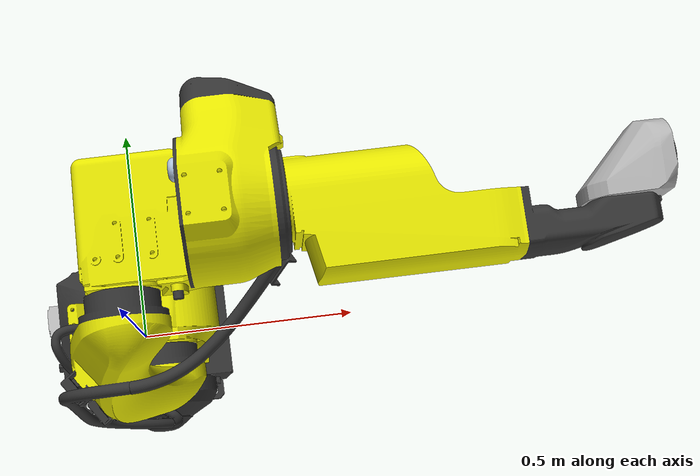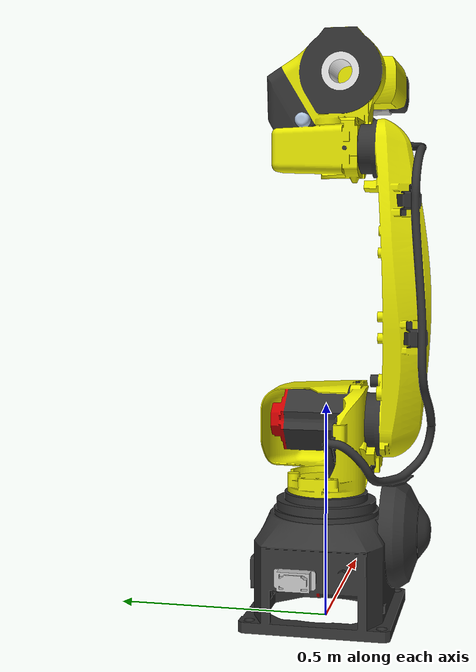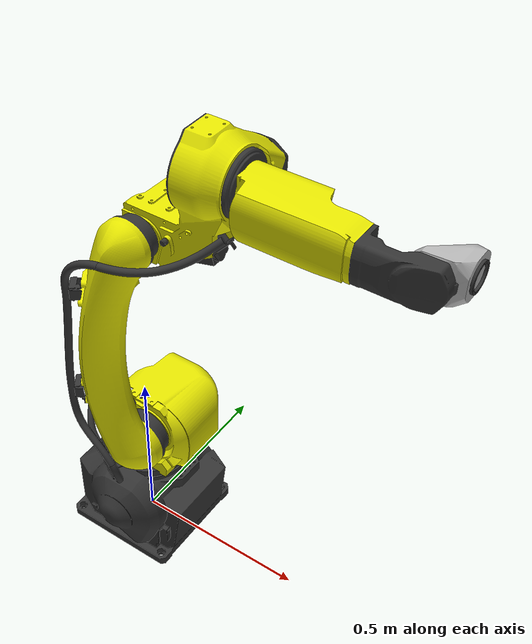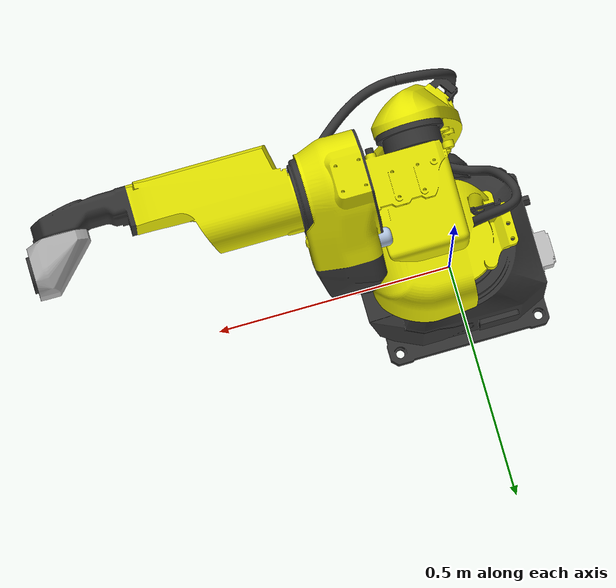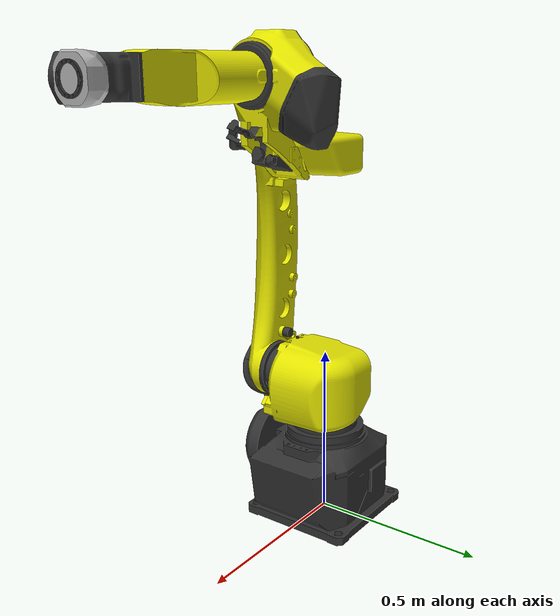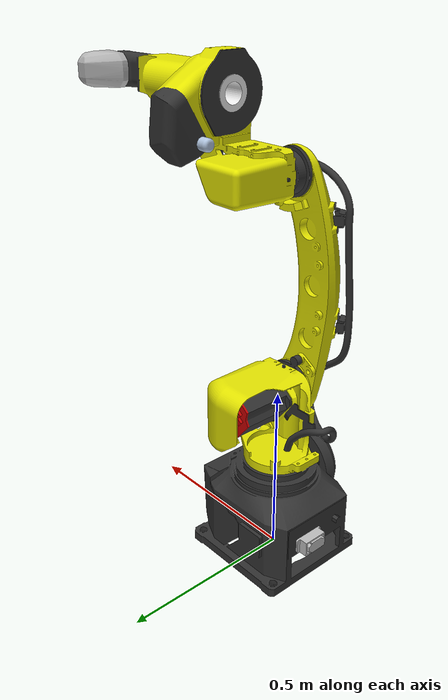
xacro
<?xml version="1.0" ?>
<robot name="m10_12-14d" xmlns:xacro="http://wiki.ros.org/xacro">
  <xacro:include
    filename="$(find fanuc_m10_description)/urdf/m10_12-14d_urdf_macro.xacro"
  />

  <link name="world" />
  <link name="ee_link" />
  <xacro:m10_12-14d parent="world" child="ee_link">
    <origin xyz="0 0 0" rpy="0 0 0" />
  </xacro:m10_12-14d>
</robot>

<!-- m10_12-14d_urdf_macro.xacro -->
<!--
SPDX-FileCopyrightText: 2025, FANUC America Corporation
SPDX-FileCopyrightText: 2025, FANUC CORPORATION
SPDX-License-Identifier: Apache-2.0
-->
<!-- URDF for M-10/12-14D (M-10iD/12) -->
<robot xmlns:xacro="http://wiki.ros.org/xacro">
  <xacro:macro
    name="m10_12-14d"
    params="prefix=''
            parent
            *origin
            child"
  >
    <xacro:property name="j1_lower_limit" value="${radians(-170)}" />
    <xacro:property name="j2_lower_limit" value="${radians(-100)}" />
    <xacro:property name="j3_lower_limit" value="${radians(-70)}" />
    <xacro:property name="j4_lower_limit" value="${radians(-190)}" />
    <xacro:property name="j5_lower_limit" value="${radians(-125)}" />
    <xacro:property name="j6_lower_limit" value="${radians(-360)}" />

    <xacro:property name="j1_upper_limit" value="${radians( 170)}" />
    <xacro:property name="j2_upper_limit" value="${radians( 145)}" />
    <xacro:property name="j3_upper_limit" value="${radians( 205)}" />
    <xacro:property name="j4_upper_limit" value="${radians( 190)}" />
    <xacro:property name="j5_upper_limit" value="${radians( 125)}" />
    <xacro:property name="j6_upper_limit" value="${radians( 360)}" />

    <xacro:property name="j1_effort_limit" value=" 2000" />
    <xacro:property name="j2_effort_limit" value=" 3000" />
    <xacro:property name="j3_effort_limit" value=" 1000" />
    <xacro:property name="j4_effort_limit" value=" 100" />
    <xacro:property name="j5_effort_limit" value=" 100" />
    <xacro:property name="j6_effort_limit" value=" 100" />

    <xacro:property name="j1_velocity_limit" value="${radians( 260)}" />
    <xacro:property name="j2_velocity_limit" value="${radians( 240)}" />
    <xacro:property name="j3_velocity_limit" value="${radians( 260)}" />
    <xacro:property name="j4_velocity_limit" value="${radians( 430)}" />
    <xacro:property name="j5_velocity_limit" value="${radians( 450)}" />
    <xacro:property name="j6_velocity_limit" value="${radians( 720)}" />

    <!-- links -->
    <link name="${prefix}base_link">
      <visual>
        <origin xyz="0 0 0" rpy="0 0 0" />
        <geometry>
          <mesh
            filename="package://fanuc_m10_description/meshes/m10_12-14d/visual/base.dae"
          />
        </geometry>
      </visual>
      <collision>
        <origin xyz="0 0 0" rpy="0 0 0" />
        <geometry>
          <mesh
            filename="package://fanuc_m10_description/meshes/m10_12-14d/collision/base.stl"
          />
        </geometry>
      </collision>
      <inertial>
        <mass value=" 60" />
        <origin xyz=" .02 -.05  .2" />
        <inertia
          ixx=" .1"
          ixy="-.1"
          ixz="-.03"
          iyy=" .1"
          iyz="-.02"
          izz=" .1"
        />
      </inertial>
    </link>

    <link name="${prefix}J1_link">
      <visual>
        <origin xyz="0 0 0" rpy="0 0 0" />
        <geometry>
          <mesh
            filename="package://fanuc_m10_description/meshes/m10_12-14d/visual/j1.dae"
          />
        </geometry>
      </visual>
      <collision>
        <origin xyz="0 0 0" rpy="0 0 0" />
        <geometry>
          <mesh
            filename="package://fanuc_m10_description/meshes/m10_12-14d/collision/j1.stl"
          />
        </geometry>
      </collision>
      <inertial>
        <mass value=" 30" />
        <origin xyz=" .06 -.02 -.04" />
        <inertia
          ixx=" .2"
          ixy=" .01"
          ixz=" .03"
          iyy=" .3"
          iyz=" .01"
          izz=" .2"
        />
      </inertial>
    </link>

    <link name="${prefix}J2_link">
      <visual>
        <origin xyz="0 0 0" rpy="0 0 0" />
        <geometry>
          <mesh
            filename="package://fanuc_m10_description/meshes/m10_12-14d/visual/j2.dae"
          />
        </geometry>
      </visual>
      <collision>
        <origin xyz="0 0 0" rpy="0 0 0" />
        <geometry>
          <mesh
            filename="package://fanuc_m10_description/meshes/m10_12-14d/collision/j2.stl"
          />
        </geometry>
      </collision>
      <inertial>
        <mass value=" 30" />
        <origin xyz="-.02 -.1  .3" />
        <inertia ixx=" 2" ixy=" .01" ixz="-.02" iyy=" 2" iyz=" .04" izz=" .1" />
      </inertial>
    </link>

    <link name="${prefix}J3_link">
      <visual>
        <origin xyz="0 0 0" rpy="0 0 0" />
        <geometry>
          <mesh
            filename="package://fanuc_m10_description/meshes/m10_12-14d/visual/j3.dae"
          />
        </geometry>
      </visual>
      <collision>
        <origin xyz="0 0 0" rpy="0 0 0" />
        <geometry>
          <mesh
            filename="package://fanuc_m10_description/meshes/m10_12-14d/collision/j3.stl"
          />
        </geometry>
      </collision>
      <inertial>
        <mass value=" 20" />
        <origin xyz=" .2  .02  .1" />
        <inertia
          ixx=" .2"
          ixy=" .02"
          ixz=" .09"
          iyy=" .3"
          iyz=" .01"
          izz=" .2"
        />
      </inertial>
    </link>

    <link name="${prefix}J4_link">
      <visual>
        <origin xyz="0 0 0" rpy="0 0 0" />
        <geometry>
          <mesh
            filename="package://fanuc_m10_description/meshes/m10_12-14d/visual/j4.dae"
          />
        </geometry>
      </visual>
      <collision>
        <origin xyz="0 0 0" rpy="0 0 0" />
        <geometry>
          <mesh
            filename="package://fanuc_m10_description/meshes/m10_12-14d/collision/j4.stl"
          />
        </geometry>
      </collision>
      <inertial>
        <mass value=" 6" />
        <origin xyz=" .5 -.05 -.003" />
        <inertia
          ixx=" .02"
          ixy="-.02"
          ixz=" .002"
          iyy=" .1"
          iyz=" .001"
          izz=" .1"
        />
      </inertial>
    </link>

    <link name="${prefix}J5_link">
      <visual>
        <origin xyz="0 0 0" rpy="0 0 0" />
        <geometry>
          <mesh
            filename="package://fanuc_m10_description/meshes/m10_12-14d/visual/j5.dae"
          />
        </geometry>
      </visual>
      <collision>
        <origin xyz="0 0 0" rpy="0 0 0" />
        <geometry>
          <mesh
            filename="package://fanuc_m10_description/meshes/m10_12-14d/collision/j5.stl"
          />
        </geometry>
      </collision>
      <inertial>
        <mass value=" 2" />
        <origin xyz=" .02 -.04  0" />
        <inertia
          ixx=" .004"
          ixy=" .001"
          ixz="-.000005"
          iyy=" .004"
          iyz="-.00001"
          izz=" .005"
        />
      </inertial>
    </link>

    <link name="${prefix}J6_link">
      <visual>
        <origin xyz="0 0 0" rpy="0 0 0" />
        <geometry>
          <mesh
            filename="package://fanuc_m10_description/meshes/m10_12-14d/visual/j6.dae"
          />
        </geometry>
      </visual>
      <collision>
        <origin xyz="0 0 0" rpy="0 0 0" />
        <geometry>
          <mesh
            filename="package://fanuc_m10_description/meshes/m10_12-14d/collision/j6.stl"
          />
        </geometry>
      </collision>
      <inertial>
        <mass value=" .5" />
        <origin xyz=" .05  0  0" />
        <inertia
          ixx=" .0005"
          ixy=" 0"
          ixz=" 0"
          iyy=" .0003"
          iyz=" 0"
          izz=" .0003"
        />
      </inertial>
    </link>

    <!-- joints -->
    <joint name="${prefix}J1" type="revolute">
      <origin xyz=" 0  0  .45" rpy="0 0 0" />
      <parent link="${prefix}base_link" />
      <child link="${prefix}J1_link" />
      <axis xyz=" 0  0  1" />
      <limit
        lower="${j1_lower_limit}"
        upper="${j1_upper_limit}"
        effort="${j1_effort_limit}"
        velocity="${j1_velocity_limit}"
      />
    </joint>

    <joint name="${prefix}J2" type="revolute">
      <origin xyz=" .075  0  0" rpy="0 0 0" />
      <parent link="${prefix}J1_link" />
      <child link="${prefix}J2_link" />
      <axis xyz=" 0  1  0" />
      <limit
        lower="${j2_lower_limit}"
        upper="${j2_upper_limit}"
        effort="${j2_effort_limit}"
        velocity="${j2_velocity_limit}"
      />
    </joint>

    <joint name="${prefix}J3" type="revolute">
      <origin xyz=" 0  0  .64" rpy="0 0 0" />
      <parent link="${prefix}J2_link" />
      <child link="${prefix}J3_link" />
      <axis xyz=" 0 -1  0" />
      <limit
        lower="${j3_lower_limit}"
        upper="${j3_upper_limit}"
        effort="${j3_effort_limit}"
        velocity="${j3_velocity_limit}"
      />
    </joint>

    <joint name="${prefix}J4" type="revolute">
      <origin xyz=" 0  0  .195" rpy="0 0 0" />
      <parent link="${prefix}J3_link" />
      <child link="${prefix}J4_link" />
      <axis xyz="-1  0  0" />
      <limit
        lower="${j4_lower_limit}"
        upper="${j4_upper_limit}"
        effort="${j4_effort_limit}"
        velocity="${j4_velocity_limit}"
      />
    </joint>

    <joint name="${prefix}J5" type="revolute">
      <origin xyz=" .7  0  0" rpy="0 0 0" />
      <parent link="${prefix}J4_link" />
      <child link="${prefix}J5_link" />
      <axis xyz=" 0 -1  0" />
      <limit
        lower="${j5_lower_limit}"
        upper="${j5_upper_limit}"
        effort="${j5_effort_limit}"
        velocity="${j5_velocity_limit}"
      />
    </joint>

    <joint name="${prefix}J6" type="revolute">
      <origin xyz=" 0  0  0" rpy="0 0 0" />
      <parent link="${prefix}J5_link" />
      <child link="${prefix}J6_link" />
      <axis xyz="-1  0  0" />
      <limit
        lower="${j6_lower_limit}"
        upper="${j6_upper_limit}"
        effort="${j6_effort_limit}"
        velocity="${j6_velocity_limit}"
      />
    </joint>

    <!-- world coords -->
    <link name="${prefix}wbase" />
    <joint name="${prefix}base_link-wbase" type="fixed">
      <origin xyz=" 0  0  .45" rpy="0 0 0" />
      <parent link="${prefix}base_link" />
      <child link="${prefix}wbase" />
    </joint>

    <!-- flange coords -->
    <link name="${prefix}flange" />
    <joint name="${prefix}J6-flange" type="fixed">
      <origin xyz=" .075  0  0" rpy="0 0 0" />
      <parent link="${prefix}J6_link" />
      <child link="${prefix}flange" />
    </joint>

    <!-- Attach to parent -->
    <joint name="${prefix}base_joint" type="fixed">
      <xacro:insert_block name="origin" />
      <parent link="${parent}" />
      <child link="${prefix}base_link" />
    </joint>

    <!-- Attach child -->
    <joint name="${prefix}child_joint" type="fixed">
      <origin xyz="0 0 0" rpy="0 0 0" />
      <parent link="${prefix}flange" />
      <child link="${child}" />
    </joint>
  </xacro:macro>
</robot>
